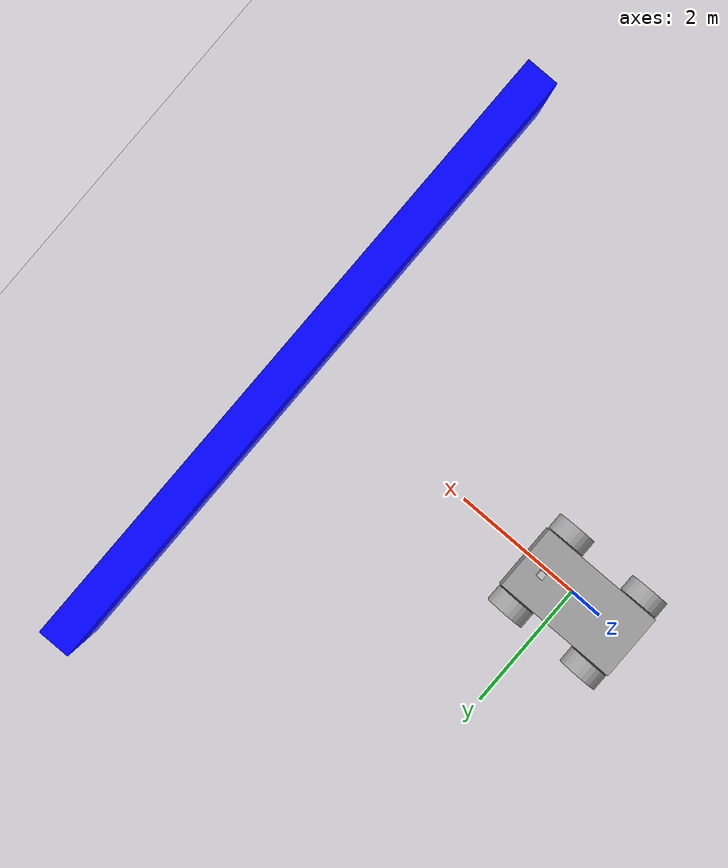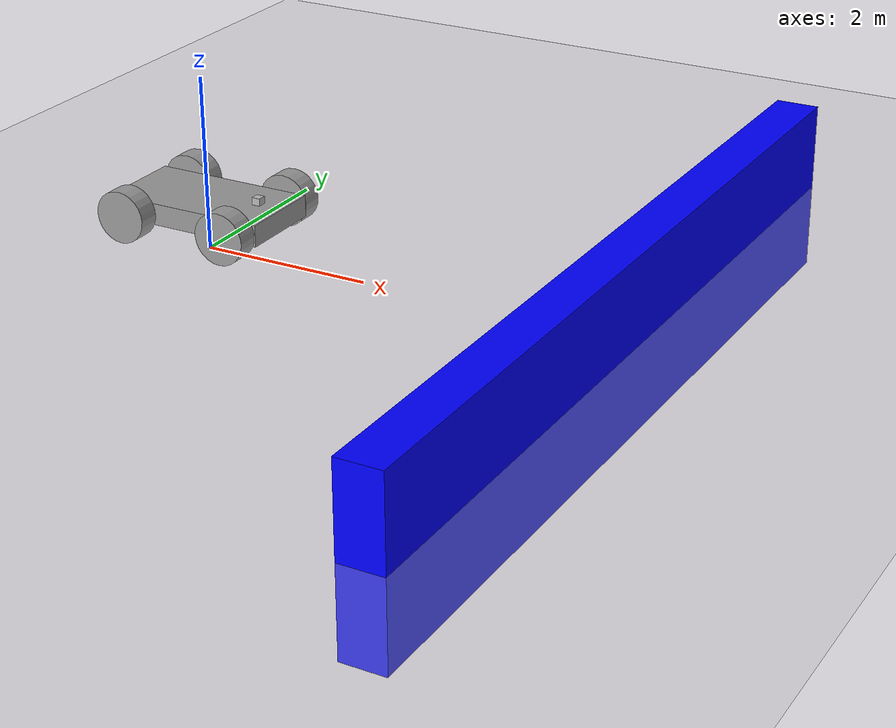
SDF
<?xml version="1.0" ?>
<sdf version="1.8">
    <world name="Moving_robot">
        <physics name="1ms" type="ignored">
            <max_step_size>0.001</max_step_size>
            <real_time_factor>1.0</real_time_factor>
        </physics>
        <plugin
            filename="libignition-gazebo-physics-system.so"
            name="ignition::gazebo::systems::Physics">
        </plugin>
        <plugin
            filename="libignition-gazebo-user-commands-system.so"
            name="ignition::gazebo::systems::UserCommands">
        </plugin>
        <plugin
            filename="libignition-gazebo-scene-broadcaster-system.so"
            name="ignition::gazebo::systems::SceneBroadcaster">
        </plugin>
        <plugin filename="libignition-gazebo-imu-system.so"
        name="ignition::gazebo::systems::Imu">
        </plugin>
        <plugin filename="libignition-gazebo-contact-system.so"
        name="ignition::gazebo::systems::Contact">
        </plugin>
        <plugin
        filename="libignition-gazebo-sensors-system.so"
        name="ignition::gazebo::systems::Sensors">
      <render_engine>ogre2</render_engine>
        </plugin>

        <light type="directional" name="sun">
            <cast_shadows>true</cast_shadows>
            <pose>0 0 10 0 0 0</pose>
            <diffuse>0.8 0.8 0.8 1</diffuse>
            <specular>0.2 0.2 0.2 1</specular>
            <attenuation>
                <range>1000</range>
                <constant>0.9</constant>
                <linear>0.01</linear>
                <quadratic>0.001</quadratic>
            </attenuation>
            <direction>-0.5 0.1 -0.9</direction>
        </light>

        <model name="ground_plane">
            <static>true</static>
            <link name="link">
                <collision name="collision">
                <geometry>
                    <plane>
                    <normal>0 0 1</normal>
                    </plane>
                </geometry>
                </collision>
                <visual name="visual">
                <geometry>
                    <plane>
                    <normal>0 0 1</normal>
                    <size>100 100</size>
                    </plane>
                </geometry>
                <material>
                    <ambient>0.8 0.8 0.8 1</ambient>
                    <diffuse>0.8 0.8 0.8 1</diffuse>
                    <specular>0.8 0.8 0.8 1</specular>
                </material>
                </visual>
            </link>
        </model>

    <model name='Task-1'>
    <link name='link_0'>
      <inertial>
        <mass>0.476707</mass>
        <inertia>
          <ixx>0.042222</ixx>
          <ixy>0</ixy>
          <ixz>0</ixz>
          <iyy>0.14614</iyy>
          <iyz>0</iyz>
          <izz>0.183369</izz>
        </inertia>
        <pose>0 0 0.4 0 -0 0</pose>
      </inertial>
      <pose>-0.030529 0.0588 0.481634 0 -0 0</pose>
      <gravity>1</gravity>
      <self_collide>0</self_collide>
      <kinematic>0</kinematic>
      <enable_wind>0</enable_wind>
      <visual name='visual'>
        <pose>0 0 0 0 -0 0</pose>
        <geometry>
          <box>
            <size>1.90155 1 0.250683</size>
          </box>
        </geometry>
        <material>
          <lighting>1</lighting>
          <script>
            <uri>file://media/materials/scripts/gazebo.material</uri>
            <name>Gazebo/Grey</name>
          </script>
          <shader type='pixel'>
            <normal_map>__default__</normal_map>
          </shader>
          <ambient>0.3 0.3 0.3 1</ambient>
          <diffuse>0.7 0.7 0.7 1</diffuse>
          <specular>0.01 0.01 0.01 1</specular>
          <emissive>0 0 0 1</emissive>
        </material>
        <transparency>0</transparency>
        <cast_shadows>1</cast_shadows>
      </visual>
      <collision name='collision'>
        <laser_retro>0</laser_retro>
        <max_contacts>10</max_contacts>
        <pose>0 0 0 0 -0 0</pose>
        <geometry>
          <box>
            <size>1.90155 1 0.250683</size>
          </box>
        </geometry>
        <surface>
          <friction>
            <ode>
              <mu>1</mu>
              <mu2>1</mu2>
              <fdir1>0 0 0</fdir1>
              <slip1>0</slip1>
              <slip2>0</slip2>
            </ode>
            <torsional>
              <coefficient>1</coefficient>
              <patch_radius>0</patch_radius>
              <surface_radius>0</surface_radius>
              <use_patch_radius>1</use_patch_radius>
              <ode>
                <slip>0</slip>
              </ode>
            </torsional>
          </friction>
          <bounce>
            <restitution_coefficient>0</restitution_coefficient>
            <threshold>1e+06</threshold>
          </bounce>
          <contact>
            <collide_without_contact>0</collide_without_contact>
            <collide_without_contact_bitmask>1</collide_without_contact_bitmask>
            <collide_bitmask>1</collide_bitmask>
            <ode>
              <soft_cfm>0</soft_cfm>
              <soft_erp>0.2</soft_erp>
              <kp>1e+13</kp>
              <kd>1</kd>
              <max_vel>0.01</max_vel>
              <min_depth>0</min_depth>
            </ode>
            <bullet>
              <split_impulse>1</split_impulse>
              <split_impulse_penetration_threshold>-0.01</split_impulse_penetration_threshold>
              <soft_cfm>0</soft_cfm>
              <soft_erp>0.2</soft_erp>
              <kp>1e+13</kp>
              <kd>1</kd>
            </bullet>
          </contact>
        </surface>
      </collision>
      <sensor name="imu_sensor" type="imu">
      <always_on>1</always_on>
      <update_rate>1</update_rate>
      <visualize>true</visualize>
      <topic>imu</topic>
      </sensor>
      <sensor name='gpu_lidar' type='gpu_lidar'>"
      <pose relative_to='lidar_frame'>0 0 0 0 0 0</pose>
      <topic>lidar</topic>
      <update_rate>10</update_rate>
      <ray>
        <scan>
            <horizontal>
                <samples>640</samples>
                <resolution>1</resolution>
                <min_angle>-1.396263</min_angle>
                <max_angle>1.396263</max_angle>
            </horizontal>
            <vertical>
                <samples>1</samples>
                <resolution>0.01</resolution>
                <min_angle>0</min_angle>
                <max_angle>0</max_angle>
            </vertical>
        </scan>
        <range>
            <min>0.08</min>
            <max>10.0</max>
            <resolution>0.01</resolution>
        </range>
     </ray>
     <always_on>1</always_on>
     <visualize>true</visualize>
     </sensor>
    </link>

    <link name='link_3'>
      <inertial>
        <mass>1</mass>
        <inertia>
          <ixx>0.145833</ixx>
          <ixy>0</ixy>
          <ixz>0</ixz>
          <iyy>0.145833</iyy>
          <iyz>0</iyz>
          <izz>0.125</izz>
        </inertia>
        <pose>0 0 0 0 -0 0</pose>
      </inertial>
      <pose>0.620247 0.698829 0.481634 1.5707 -0 0</pose>
      <gravity>1</gravity>
      <self_collide>0</self_collide>
      <kinematic>0</kinematic>
      <enable_wind>0</enable_wind>
      <visual name='visual'>
        <pose>0 0 0 0 -0 0</pose>
        <geometry>
          <cylinder>
            <radius>0.3</radius>
            <length>0.25</length>
          </cylinder>
        </geometry>
        <material>
          <lighting>1</lighting>
          <script>
            <uri>file://media/materials/scripts/gazebo.material</uri>
            <name>Gazebo/Grey</name>
          </script>
          <shader type='pixel'>
            <normal_map>__default__</normal_map>
          </shader>
          <ambient>0.3 0.3 0.3 1</ambient>
          <diffuse>0.7 0.7 0.7 1</diffuse>
          <specular>0.01 0.01 0.01 1</specular>
          <emissive>0 0 0 1</emissive>
        </material>
        <transparency>0</transparency>
        <cast_shadows>1</cast_shadows>
      </visual>
      <collision name='collision'>
        <laser_retro>0</laser_retro>
        <max_contacts>10</max_contacts>
        <pose>0 0 0 0 -0 0</pose>
        <geometry>
          <cylinder>
            <radius>0.3</radius>
            <length>0.25</length>
          </cylinder>
        </geometry>
        <surface>
          <friction>
            <ode>
              <mu>1</mu>
              <mu2>1</mu2>
              <fdir1>0 0 0</fdir1>
              <slip1>0</slip1>
              <slip2>0</slip2>
            </ode>
            <torsional>
              <coefficient>1</coefficient>
              <patch_radius>0</patch_radius>
              <surface_radius>0</surface_radius>
              <use_patch_radius>1</use_patch_radius>
              <ode>
                <slip>0</slip>
              </ode>
            </torsional>
          </friction>
          <bounce>
            <restitution_coefficient>0</restitution_coefficient>
            <threshold>1e+06</threshold>
          </bounce>
          <contact>
            <collide_without_contact>0</collide_without_contact>
            <collide_without_contact_bitmask>1</collide_without_contact_bitmask>
            <collide_bitmask>1</collide_bitmask>
            <ode>
              <soft_cfm>0</soft_cfm>
              <soft_erp>0.2</soft_erp>
              <kp>1e+13</kp>
              <kd>1</kd>
              <max_vel>0.01</max_vel>
              <min_depth>0</min_depth>
            </ode>
            <bullet>
              <split_impulse>1</split_impulse>
              <split_impulse_penetration_threshold>-0.01</split_impulse_penetration_threshold>
              <soft_cfm>0</soft_cfm>
              <soft_erp>0.2</soft_erp>
              <kp>1e+13</kp>
              <kd>1</kd>
            </bullet>
          </contact>
        </surface>
      </collision>
    </link>
    <link name='link_3_clone'>
      <inertial>
        <mass>1</mass>
        <inertia>
          <ixx>0.145833</ixx>
          <ixy>0</ixy>
          <ixz>0</ixz>
          <iyy>0.145833</iyy>
          <iyz>0</iyz>
          <izz>0.125</izz>
        </inertia>
        <pose>0 0 0 0 -0 0</pose>
      </inertial>
      <pose>0.620247 -0.581229 0.481634 1.5707 -0 0</pose>
      <gravity>1</gravity>
      <self_collide>0</self_collide>
      <kinematic>0</kinematic>
      <enable_wind>0</enable_wind>
      <visual name='visual'>
        <pose>0 0 0 0 -0 0</pose>
        <geometry>
          <cylinder>
            <radius>0.3</radius>
            <length>0.25</length>
          </cylinder>
        </geometry>
        <material>
          <lighting>1</lighting>
          <script>
            <uri>file://media/materials/scripts/gazebo.material</uri>
            <name>Gazebo/Grey</name>
          </script>
          <shader type='pixel'>
            <normal_map>__default__</normal_map>
          </shader>
          <ambient>0.3 0.3 0.3 1</ambient>
          <diffuse>0.7 0.7 0.7 1</diffuse>
          <specular>0.01 0.01 0.01 1</specular>
          <emissive>0 0 0 1</emissive>
        </material>
        <transparency>0</transparency>
        <cast_shadows>1</cast_shadows>
      </visual>
      <collision name='collision'>
        <laser_retro>0</laser_retro>
        <max_contacts>10</max_contacts>
        <pose>0 0 0 0 -0 0</pose>
        <geometry>
          <cylinder>
            <radius>0.3</radius>
            <length>0.25</length>
          </cylinder>
        </geometry>
        <surface>
          <friction>
            <ode>
              <mu>1</mu>
              <mu2>1</mu2>
              <fdir1>0 0 0</fdir1>
              <slip1>0</slip1>
              <slip2>0</slip2>
            </ode>
            <torsional>
              <coefficient>1</coefficient>
              <patch_radius>0</patch_radius>
              <surface_radius>0</surface_radius>
              <use_patch_radius>1</use_patch_radius>
              <ode>
                <slip>0</slip>
              </ode>
            </torsional>
          </friction>
          <bounce>
            <restitution_coefficient>0</restitution_coefficient>
            <threshold>1e+06</threshold>
          </bounce>
          <contact>
            <collide_without_contact>0</collide_without_contact>
            <collide_without_contact_bitmask>1</collide_without_contact_bitmask>
            <collide_bitmask>1</collide_bitmask>
            <ode>
              <soft_cfm>0</soft_cfm>
              <soft_erp>0.2</soft_erp>
              <kp>1e+13</kp>
              <kd>1</kd>
              <max_vel>0.01</max_vel>
              <min_depth>0</min_depth>
            </ode>
            <bullet>
              <split_impulse>1</split_impulse>
              <split_impulse_penetration_threshold>-0.01</split_impulse_penetration_threshold>
              <soft_cfm>0</soft_cfm>
              <soft_erp>0.2</soft_erp>
              <kp>1e+13</kp>
              <kd>1</kd>
            </bullet>
          </contact>
        </surface>
      </collision>
    </link>
    <link name='link_3_clone_0'>
      <inertial>
        <mass>1</mass>
        <inertia>
          <ixx>0.145833</ixx>
          <ixy>0</ixy>
          <ixz>0</ixz>
          <iyy>0.145833</iyy>
          <iyz>0</iyz>
          <izz>0.125</izz>
        </inertia>
        <pose>0 0 0 0 -0 0</pose>
      </inertial>
      <pose>-0.681305 0.698829 0.481634 1.5707 -0 0</pose>
      <gravity>1</gravity>
      <self_collide>0</self_collide>
      <kinematic>0</kinematic>
      <enable_wind>0</enable_wind>
      <visual name='visual'>
        <pose>0 0 0 0 -0 0</pose>
        <geometry>
          <cylinder>
            <radius>0.3</radius>
            <length>0.25</length>
          </cylinder>
        </geometry>
        <material>
          <lighting>1</lighting>
          <script>
            <uri>file://media/materials/scripts/gazebo.material</uri>
            <name>Gazebo/Grey</name>
          </script>
          <shader type='pixel'>
            <normal_map>__default__</normal_map>
          </shader>
          <ambient>0.3 0.3 0.3 1</ambient>
          <diffuse>0.7 0.7 0.7 1</diffuse>
          <specular>0.01 0.01 0.01 1</specular>
          <emissive>0 0 0 1</emissive>
        </material>
        <transparency>0</transparency>
        <cast_shadows>1</cast_shadows>
      </visual>
      <collision name='collision'>
        <laser_retro>0</laser_retro>
        <max_contacts>10</max_contacts>
        <pose>0 0 0 0 -0 0</pose>
        <geometry>
          <cylinder>
            <radius>0.3</radius>
            <length>0.25</length>
          </cylinder>
        </geometry>
        <surface>
          <friction>
            <ode>
              <mu>1</mu>
              <mu2>1</mu2>
              <fdir1>0 0 0</fdir1>
              <slip1>0</slip1>
              <slip2>0</slip2>
            </ode>
            <torsional>
              <coefficient>1</coefficient>
              <patch_radius>0</patch_radius>
              <surface_radius>0</surface_radius>
              <use_patch_radius>1</use_patch_radius>
              <ode>
                <slip>0</slip>
              </ode>
            </torsional>
          </friction>
          <bounce>
            <restitution_coefficient>0</restitution_coefficient>
            <threshold>1e+06</threshold>
          </bounce>
          <contact>
            <collide_without_contact>0</collide_without_contact>
            <collide_without_contact_bitmask>1</collide_without_contact_bitmask>
            <collide_bitmask>1</collide_bitmask>
            <ode>
              <soft_cfm>0</soft_cfm>
              <soft_erp>0.2</soft_erp>
              <kp>1e+13</kp>
              <kd>1</kd>
              <max_vel>0.01</max_vel>
              <min_depth>0</min_depth>
            </ode>
            <bullet>
              <split_impulse>1</split_impulse>
              <split_impulse_penetration_threshold>-0.01</split_impulse_penetration_threshold>
              <soft_cfm>0</soft_cfm>
              <soft_erp>0.2</soft_erp>
              <kp>1e+13</kp>
              <kd>1</kd>
            </bullet>
          </contact>
        </surface>
      </collision>
    </link>
    <link name='link_3_clone_1'>
      <inertial>
        <mass>1</mass>
        <inertia>
          <ixx>0.145833</ixx>
          <ixy>0</ixy>
          <ixz>0</ixz>
          <iyy>0.145833</iyy>
          <iyz>0</iyz>
          <izz>0.125</izz>
        </inertia>
        <pose>0 0 0 0 -0 0</pose>
      </inertial>
      <pose>-0.681305 -0.581229 0.481634 1.5707 -0 0</pose>
      <gravity>1</gravity>
      <self_collide>0</self_collide>
      <kinematic>0</kinematic>
      <enable_wind>0</enable_wind>
      <visual name='visual'>
        <pose>0 0 0 0 -0 0</pose>
        <geometry>
          <cylinder>
            <radius>0.3</radius>
            <length>0.25</length>
          </cylinder>
        </geometry>
        <material>
          <lighting>1</lighting>
          <script>
            <uri>file://media/materials/scripts/gazebo.material</uri>
            <name>Gazebo/Grey</name>
          </script>
          <shader type='pixel'>
            <normal_map>__default__</normal_map>
          </shader>
          <ambient>0.3 0.3 0.3 1</ambient>
          <diffuse>0.7 0.7 0.7 1</diffuse>
          <specular>0.01 0.01 0.01 1</specular>
          <emissive>0 0 0 1</emissive>
        </material>
        <transparency>0</transparency>
        <cast_shadows>1</cast_shadows>
      </visual>
      <collision name='collision'>
        <laser_retro>0</laser_retro>
        <max_contacts>10</max_contacts>
        <pose>0 0 0 0 -0 0</pose>
        <geometry>
          <cylinder>
            <radius>0.3</radius>
            <length>0.25</length>
          </cylinder>
        </geometry>
        <surface>
          <friction>
            <ode>
              <mu>1</mu>
              <mu2>1</mu2>
              <fdir1>0 0 0</fdir1>
              <slip1>0</slip1>
              <slip2>0</slip2>
            </ode>
            <torsional>
              <coefficient>1</coefficient>
              <patch_radius>0</patch_radius>
              <surface_radius>0</surface_radius>
              <use_patch_radius>1</use_patch_radius>
              <ode>
                <slip>0</slip>
              </ode>
            </torsional>
          </friction>
          <bounce>
            <restitution_coefficient>0</restitution_coefficient>
            <threshold>1e+06</threshold>
          </bounce>
          <contact>
            <collide_without_contact>0</collide_without_contact>
            <collide_without_contact_bitmask>1</collide_without_contact_bitmask>
            <collide_bitmask>1</collide_bitmask>
            <ode>
              <soft_cfm>0</soft_cfm>
              <soft_erp>0.2</soft_erp>
              <kp>1e+13</kp>
              <kd>1</kd>
              <max_vel>0.01</max_vel>
              <min_depth>0</min_depth>
            </ode>
            <bullet>
              <split_impulse>1</split_impulse>
              <split_impulse_penetration_threshold>-0.01</split_impulse_penetration_threshold>
              <soft_cfm>0</soft_cfm>
              <soft_erp>0.2</soft_erp>
              <kp>1e+13</kp>
              <kd>1</kd>
            </bullet>
          </contact>
        </surface>
      </collision>
    </link>
    <model name='depth_camera'>
      <link name='link'>
        <pose>0 0 0.05 0 -0 0</pose>
        <inertial>
          <mass>0.1</mass>
          <inertia>
            <ixx>0.000166667</ixx>
            <iyy>0.000166667</iyy>
            <izz>0.000166667</izz>
            <ixy>0</ixy>
            <ixz>0</ixz>
            <iyz>0</iyz>
          </inertia>
        </inertial>
        <collision name='collision'>
          <geometry>
            <box>
              <size>0.1 0.1 0.1</size>
            </box>
          </geometry>
        </collision>
        <visual name='visual'>
          <geometry>
            <box>
              <size>0.1 0.1 0.1</size>
            </box>
          </geometry>
        </visual>
        <sensor name='camera' type='depth'>
          <camera>
            <horizontal_fov>1.047</horizontal_fov>
            <image>
              <width>320</width>
              <height>240</height>
            </image>
            <clip>
              <near>0.1</near>
              <far>100</far>
            </clip>
          </camera>
          <always_on>1</always_on>
          <update_rate>30</update_rate>
          <visualize>1</visualize>
        </sensor>
      </link>
      <pose>0.607953 0.101191 0.591828 0 -0 0</pose>
    </model>
    <joint name='link_0_JOINT_0' type='revolute'>
      <parent>link_0</parent>
      <child>link_3</child>
      <pose>0 0 0 0 -0 0</pose>
      <axis>
        <xyz>0 0 1</xyz>
        <limit>
          <lower>-1.79769e+308</lower>
          <upper>1.79769e+308</upper>
          <effort>-1</effort>
          <velocity>-1</velocity>
        </limit>
        <dynamics>
          <spring_reference>0</spring_reference>
          <spring_stiffness>0</spring_stiffness>
          <damping>0</damping>
        </dynamics>
      </axis>
      <physics>
        <ode>
          <limit>
            <cfm>0</cfm>
            <erp>0.2</erp>
          </limit>
          <suspension>
            <cfm>0</cfm>
            <erp>0.2</erp>
          </suspension>
        </ode>
      </physics>
    </joint>
    <joint name='link_0_JOINT_1' type='revolute'>
      <parent>link_0</parent>
      <child>link_3_clone</child>
      <pose>0 0 0 0 -0 0</pose>
      <axis>
        <xyz>0 0 1</xyz>
        <limit>
          <lower>-1.79769e+308</lower>
          <upper>1.79769e+308</upper>
          <effort>-1</effort>
          <velocity>-1</velocity>
        </limit>
        <dynamics>
          <spring_reference>0</spring_reference>
          <spring_stiffness>0</spring_stiffness>
          <damping>0</damping>
        </dynamics>
      </axis>
      <physics>
        <ode>
          <limit>
            <cfm>0</cfm>
            <erp>0.2</erp>
          </limit>
          <suspension>
            <cfm>0</cfm>
            <erp>0.2</erp>
          </suspension>
        </ode>
      </physics>
    </joint>
    <joint name='link_0_JOINT_2' type='revolute'>
      <parent>link_0</parent>
      <child>link_3_clone_0</child>
      <pose>0 0 0 0 -0 0</pose>
      <axis>
        <xyz>0 0 1</xyz>
        <limit>
          <lower>-1.79769e+308</lower>
          <upper>1.79769e+308</upper>
          <effort>-1</effort>
          <velocity>-1</velocity>
        </limit>
        <dynamics>
          <spring_reference>0</spring_reference>
          <spring_stiffness>0</spring_stiffness>
          <damping>0</damping>
        </dynamics>
      </axis>
      <physics>
        <ode>
          <limit>
            <cfm>0</cfm>
            <erp>0.2</erp>
          </limit>
          <suspension>
            <cfm>0</cfm>
            <erp>0.2</erp>
          </suspension>
        </ode>
      </physics>
    </joint>
    <joint name='link_0_JOINT_3' type='revolute'>
      <parent>link_0</parent>
      <child>link_3_clone_1</child>
      <pose>0 0 0 0 -0 0</pose>
      <axis>
        <xyz>0 0 1</xyz>
        <limit>
          <lower>-1.79769e+308</lower>
          <upper>1.79769e+308</upper>
          <effort>-1</effort>
          <velocity>-1</velocity>
        </limit>
        <dynamics>
          <spring_reference>0</spring_reference>
          <spring_stiffness>0</spring_stiffness>
          <damping>0</damping>
        </dynamics>
      </axis>
      <physics>
        <ode>
          <limit>
            <cfm>0</cfm>
            <erp>0.2</erp>
          </limit>
          <suspension>
            <cfm>0</cfm>
            <erp>0.2</erp>
          </suspension>
        </ode>
      </physics>
    </joint>
    <joint name='link_0_JOINT_4' type='fixed'>
      <parent>link_0</parent>
      <child>depth_camera::link</child>
      <pose>0 0 0 0 -0 0</pose>
      <physics>
        <ode>
          <limit>
            <cfm>0</cfm>
            <erp>0.2</erp>
          </limit>
          <suspension>
            <cfm>0</cfm>
            <erp>0.2</erp>
          </suspension>
        </ode>
      </physics>
    </joint>
    <static>0</static>
    <allow_auto_disable>1</allow_auto_disable>

          <plugin
                filename="libignition-gazebo-diff-drive-system.so"
                name="ignition::gazebo::systems::DiffDrive">
                <right_joint>link_0_JOINT_0</right_joint>
                <left_joint>link_0_JOINT_1</left_joint>
                <right_joint>link_0_JOINT_2</right_joint>
                <left_joint>link_0_JOINT_3</left_joint>
                <wheel_separation>1.2</wheel_separation>
                <wheel_radius>0.4</wheel_radius>
                <odom_publish_frequency>1</odom_publish_frequency>
                <topic>cmd_vel</topic>
            </plugin>
            <frame name="lidar_frame" attached_to='link_0'>
            <pose>0.8 0 0.5 0 0 0</pose>
            </frame>
   </model>
      <model name='wall'>
    <static>true</static>
    <pose>5 0 0 0 0 0</pose><!--pose relative to the world-->
    <link name='box'>
        <pose/>
        <visual name='visual'>
            <geometry>
                <box>
                    <size>0.5 10.0 2.0</size>
                </box>
            </geometry>
            <!--let's add color to our link-->
            <material>
                <ambient>0.0 0.0 1.0 1</ambient>
                <diffuse>0.0 0.0 1.0 1</diffuse>
                <specular>0.0 0.0 1.0 1</specular>
            </material>
        </visual>
        <collision name='collision'>
            <geometry>
                <box>
                    <size>0.5 10.0 2.0</size>
                </box>
            </geometry>
        </collision>
        <sensor name='sensor_contact' type='contact'>
    <contact>
        <collision>collision</collision>
    </contact>
   </sensor>
    </link>
    <plugin filename="libignition-gazebo-touchplugin-system.so"
        name="ignition::gazebo::systems::TouchPlugin">
    <target>vehicle_blue</target>
    <namespace>wall</namespace>
    <time>0.001</time>
    <enabled>true</enabled>
   </plugin>
</model>

        <!-- Moving Forward-->
        <plugin filename="libignition-gazebo-triggered-publisher-system.so"
                name="ignition::gazebo::systems::TriggeredPublisher">
            <input type="ignition.msgs.Int32" topic="/keyboard/keypress">
                <match field="data">16777235</match>
            </input>
            <output type="ignition.msgs.Twist" topic="/cmd_vel">
                linear: {x: 1}, angular: {z: 0.0}
            </output>
        </plugin>

        <!-- Moving Backward-->
        <plugin filename="libignition-gazebo-triggered-publisher-system.so"
                name="ignition::gazebo::systems::TriggeredPublisher">
            <input type="ignition.msgs.Int32" topic="/keyboard/keypress">
                <match field="data">16777237</match>
            </input>
            <output type="ignition.msgs.Twist" topic="/cmd_vel">
                linear: {x: -1}, angular: {z: 0.0}
            </output>
        </plugin>

        <!-- Rotating right-->
        <plugin filename="libignition-gazebo-triggered-publisher-system.so"
                name="ignition::gazebo::systems::TriggeredPublisher">
            <input type="ignition.msgs.Int32" topic="/keyboard/keypress">
                <match field="data">16777236</match>
            </input>
            <output type="ignition.msgs.Twist" topic="/cmd_vel">
                linear: {x: 0.0}, angular: {z: -1}
            </output>
        </plugin>

        <!--Rotating left-->
        <plugin filename="libignition-gazebo-triggered-publisher-system.so"
                name="ignition::gazebo::systems::TriggeredPublisher">
            <input type="ignition.msgs.Int32" topic="/keyboard/keypress">
                <match field="data">16777234</match>
            </input>
            <output type="ignition.msgs.Twist" topic="/cmd_vel">
                linear: {x: 0.0}, angular: {z: 1}
            </output>
        </plugin>
    </world>
</sdf>
